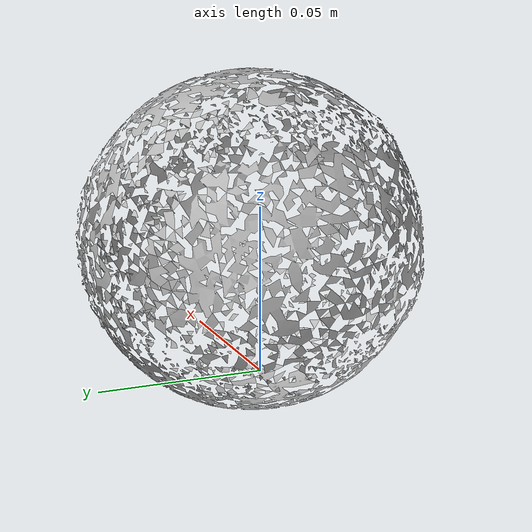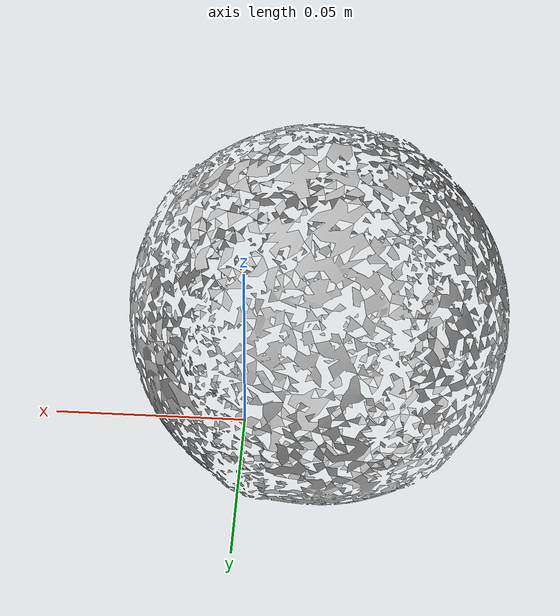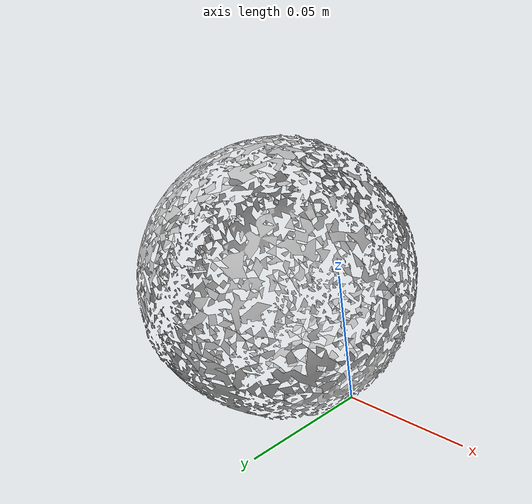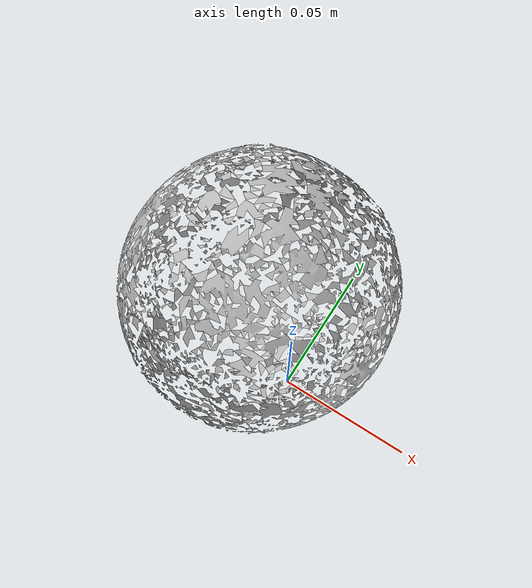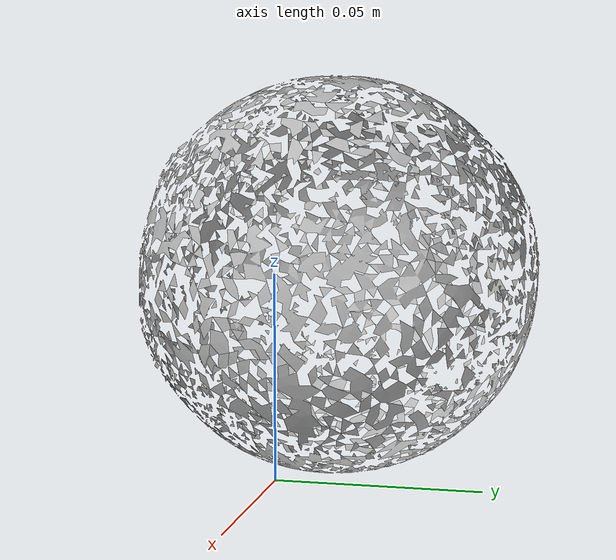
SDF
<?xml version='1.0'?>
<sdf version="1.4">
  <model name="softball">
    <static>false</static>
    <link name="link">
      <inertial>
        <pose>-0.01964979410061078 0.010882535862384666 0.04681713398392472 0.6197435598671465 1.4692508307593635 -0.8068714957004147</pose>
        <mass>0.191</mass>
        <inertia>
          <ixx>4.2804008442274943e-07</ixx>
          <ixy>3.1472957142322953e-24</ixy>
          <ixz>1.070812201370726e-23</ixz>
          <iyy>4.2650617700135237e-07</iyy>
          <iyz>-4.2650387275588773e-23</iyz>
          <izz>4.2389962645739265e-07</izz>
        </inertia>
      </inertial>
      <collision name="collision">
        <geometry>
          <mesh>
            <!-- Use a downsampled mesh for collisions -->
            <uri>model://054_softball/downsampled.obj</uri>
	        </mesh>
        </geometry>
        <surface>
          <friction>
            <ode>
              <mu>0.8</mu>
              <mu2>0.6</mu2>
            </ode>
          </friction>
        </surface>
      </collision>
      <visual name="visual">
        <geometry>
          <mesh>
            <uri>model://054_softball/google_16k/textured.obj</uri>
	        </mesh>
        </geometry>
        <material>
          <script>
            <uri>model://054_softball/softball.material</uri>
            <name>softball</name>
          </script>
        </material>
      </visual>
    </link>
  </model>
</sdf>
